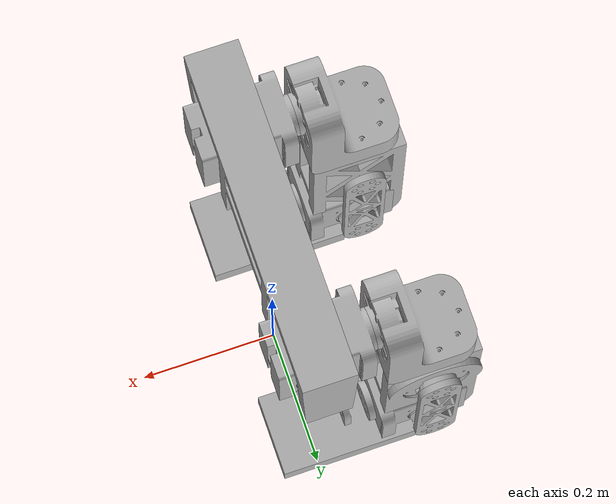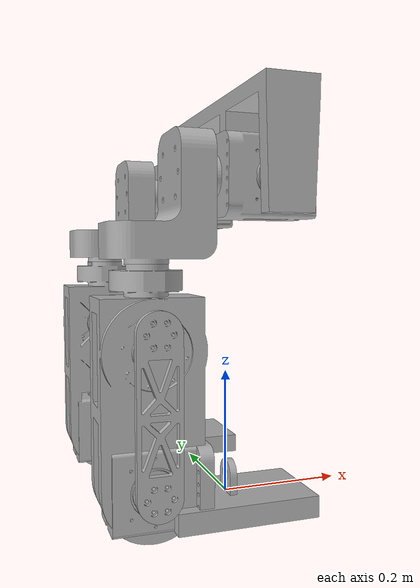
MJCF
<?xml version='1.0' encoding='utf-8'?>
<mujoco model="nemo4">
<compiler angle="radian" meshdir="assets" autolimits="true" />

  <option timestep="0.0035" iterations="8" ls_iterations="4">
    <flag eulerdamp="disable" />
  </option>

  <custom>
        <numeric data="2500" name="constraint_limit_stiffness" />
        <numeric data="27000" name="constraint_stiffness" />
        <numeric data="30" name="constraint_ang_damping" />
        <numeric data="80" name="constraint_vel_damping" />
        <numeric data="-0.05" name="ang_damping" />
        <numeric data="0.5" name="joint_scale_pos" />
        <numeric data="0.1" name="joint_scale_ang" />
        <numeric data="0" name="spring_mass_scale" />
        <numeric data="1" name="spring_inertia_scale" />
        <numeric data="20" name="matrix_inv_iterations" />
        <numeric data="15" name="solver_maxls" />
  </custom>

  <visual>
    <global ellipsoidinertia="true" />
  </visual>
  <default>
    <geom contype="0" conaffinity="0" condim="3" solref="0.005 1" />
    <equality solref="0.005 1" />
    <default class="robot">
      <site rgba="1 0 0 1" size="0.01" group="5" />
      <default class="visual">
        <geom group="2" type="mesh" contype="0" conaffinity="0" density="0" material="metallic" />
      </default>
      <default class="collision">
        <geom conaffinity="1" contype="1" group="3" rgba="0.5 0.5 0.5 1" material="metallic" />
      </default>
    </default>
  </default>

  <asset>
    <material name="metallic" rgba="0.7 0.7 0.7 1" />
    <material name="black" rgba="0.2 0.2 0.2 1" />
    <material name="transparent" rgba="0 0 0 0" />

    <mesh file="pelvis.stl" />
    <mesh name="l_hip_pitch" file="l_hip_pitch.stl" />
    <mesh name="l_hip_roll" file="l_hip_roll.stl" />
    <mesh name="l_hip_yaw" file="l_hip_yaw.stl" />
    <mesh name="l_knee" file="l_knee.stl" />
    <mesh name="l_foot_pitch" file="l_foot_pitch.stl" />
    <mesh name="l_foot_roll" file="l_foot_roll.stl" />

    <mesh name="r_hip_pitch" file="l_hip_pitch.stl" scale="1 -1 1" />
    <mesh name="r_hip_roll" file="l_hip_roll.stl" scale="1 -1 1" />
    <mesh name="r_hip_yaw" file="l_hip_yaw.stl" scale="1 -1 1" />
    <mesh name="r_knee" file="l_knee.stl" scale="1 -1 1" />
    <mesh name="r_foot_pitch" file="l_foot_pitch.stl" scale="1 -1 1" />
    <mesh name="r_foot_roll" file="l_foot_roll.stl" scale="1 -1 1" />

  </asset>
<worldbody>
  <light name="spotlight" mode="targetbodycom" target="pelvis" pos="0 -6 4" cutoff="30" />
  <body name="pelvis" pos="0.0 0.0 0.618" childclass="robot">
    <inertial pos="0.0 0.0 -0.028416610000000002" mass="6.34472558" fullinertia="0.01 0.01 0.01 0 0 0"/>
    <freejoint name="floating_base" />
    <geom type="mesh" class="visual" mesh="pelvis" />
    <body name="l_hip_pitch" pos="0.0 0.1568 -0.1244">
      <inertial pos="-0.01828491 -0.0 -2.282e-05" mass="2.02272168" fullinertia="0.01194771 0.00843561 0.01450771 0.00273097 -1.59e-06 -1.17e-06"/>
      <joint armature="0.005"  damping="2" frictionloss="0.1" actuatorfrcrange="-46 46" name="l_hip_pitch" axis="0 1 0" range="-1.3 1.3" />
      <geom type="mesh" class="visual" mesh="l_hip_pitch" />
      <body name="l_hip_roll" pos="-0.0855 0.0 0.0">
        <inertial pos="-0.05411370000000001 -1.11e-05 -0.04747620000000001" mass="2.18541932" fullinertia="0.01060697 0.01124775 0.00789875 1.6e-07 -0.00296396 -7e-07" />
        <joint armature="0.005"  damping="2" frictionloss="0.1" actuatorfrcrange="-23 23" name="l_hip_roll" axis="1 0 0" range="-0.35 1.0" />
        <geom type="mesh" class="visual" mesh="l_hip_roll" />
        <body name="l_hip_yaw" pos="-0.0841 0.0 -0.1158">
          <inertial pos="-2.282e-05 -0.0 -0.06721509" mass="2.02272168" fullinertia="0.00620274 0.00674788 0.00423406 -0.0 1.09e-06 2e-07"/>
          <joint armature="0.005"  damping="2" frictionloss="0.1" actuatorfrcrange="-23 23" name="l_hip_yaw" axis="0 0 1" range="-2.5 2.5" />
          <geom type="mesh" class="visual" mesh="l_hip_yaw" />
          <body name="l_knee" pos="0.0 0.0 -0.0855">
            <inertial pos="0.0 -0.0 -0.103" mass="0.56082045" fullinertia="0.00606987 0.00391208 0.0025227 -0.0 0.0 -0.0"/>
            <joint armature="0.005"  damping="2" frictionloss="0.1" actuatorfrcrange="-46 46" name="l_knee" axis="0 1 0" range="-2 2" />
            <geom type="mesh" class="visual" mesh="l_knee" />
            <body name="l_foot_pitch" pos="0.0 0.0 -0.206">
              <inertial pos="0.01828491 -0.0 -2.282e-05" mass="2.02272168" fullinertia="0.00423406 0.00674788 0.00620274 -2e-07 1.09e-06 -0.0"/>
              <joint armature="0.005"  damping="2" frictionloss="0.1" actuatorfrcrange="-46 46" name="l_foot_pitch" axis="0 1 0" range="-1.0 1.0" />
              <geom type="mesh" class="visual" mesh="l_foot_pitch" />
              <body name="l_foot_roll" pos="0.0855 0.0 0.0">
                <inertial pos="0.01657002 -0.0 -0.03378122" mass="2.09388829" fullinertia="0.0074471 0.00827286 0.0062946 -3.8e-07 0.00138373 -1e-06"/>
                <joint armature="0.005"  damping="2" frictionloss="0.1" actuatorfrcrange="-23 23" name="l_foot_roll" axis="1 0 0" range="-1 1" />
                <geom type="mesh" class="visual" mesh="l_foot_roll" />
                <geom class="collision" name="left_foot" pos="-0.0117 0 -0.07625" size="0.1 0.0575 0.01" type="box" />
                <site name="left_foot_p1" pos="0.05 0.0 -0.0762" />
                <site name="left_foot_p2" pos="-0.05 0.0 -0.0762" />
                <site name="left_foot_p3" pos="0.0 0.05 -0.0762" />
              </body>
            </body>
          </body>
        </body>
      </body>
    </body>

    <body name="r_hip_pitch" pos="0.0 -0.1568 -0.1244">
      <inertial pos="-0.01828491 -0.0 -2.282e-05" mass="2.02272168" fullinertia="0.01194771 0.00843561 0.01450771 0.00273097 -1.59e-06 -1.17e-06"/>
      <joint armature="0.005"  damping="2" frictionloss="0.1" actuatorfrcrange="-46 46" name="r_hip_pitch" axis="0 1 0" range="-1.3 1.3" />
      <geom type="mesh" class="visual" mesh="r_hip_pitch" />
      <body name="r_hip_roll" pos="-0.0855 0.0 0.0">
        <inertial pos="-0.05411370000000001 -1.11e-05 -0.04747620000000001" mass="2.18541932" fullinertia="0.01060697 0.01124775 0.00789875 1.6e-07 -0.00296396 -7e-07"/>
        <joint armature="0.005"  damping="2" frictionloss="0.1" actuatorfrcrange="-23 23" name="r_hip_roll" axis="1 0 0" range="-1.0 0.35" />
        <geom type="mesh" class="visual" mesh="r_hip_roll" />
        <body name="r_hip_yaw" pos="-0.0841 -0.0 -0.1158">
          <inertial pos="-2.282e-05 -0.0 -0.06721509" mass="2.02272168" fullinertia="0.00620274 0.00674788 0.00423406 -0.0 1.09e-06 2e-07"/>
          <joint armature="0.005"  damping="2" frictionloss="0.1" actuatorfrcrange="-23 23" name="r_hip_yaw" axis="0 0 1" range="-2.5 2.5" />
          <geom type="mesh" class="visual" mesh="r_hip_yaw" />
          <body name="r_knee" pos="0.0 -0.0 -0.0855">
            <inertial pos="0.0 -0.0 -0.103" mass="0.56082045" fullinertia="0.00606987 0.00391208 0.0025227 -0.0 0.0 -0.0"/>
            <joint armature="0.005"  damping="2" frictionloss="0.1" actuatorfrcrange="-46 46" name="r_knee" axis="0 1 0" range="-2 2" />
            <geom type="mesh" class="visual" mesh="l_knee" />
            <body name="r_foot_pitch" pos="0.0 -0.0 -0.206">
              <inertial pos="0.01828491 -0.0 -2.282e-05" mass="2.02272168" fullinertia="0.00423406 0.00674788 0.00620274 -2e-07 1.09e-06 -0.0"/>
              <joint armature="0.005"  damping="2" frictionloss="0.1" actuatorfrcrange="-46 46" name="r_foot_pitch" axis="0 1 0" range="-1.0 1.0" />
              <geom type="mesh" class="visual" mesh="l_foot_pitch" />
              <body name="r_foot_roll" pos="0.0855 -0.0 0.0">
                <inertial pos="0.01657002 -0.0 -0.03378122" mass="2.09388829" fullinertia="0.0074471 0.00827286 0.0062946 -3.8e-07 0.00138373 -1e-06"/>
                <joint armature="0.005"  damping="2" frictionloss="0.1" actuatorfrcrange="-23 23" name="r_foot_roll" axis="1 0 0" range="-1 1" />
                <geom type="mesh" class="visual" mesh="l_foot_roll" />
                <geom class="collision" name="right_foot" pos="-0.0117 0 -0.07625" size="0.1 0.0575 0.01" type="box" />
                <site name="right_foot_p1" pos="0.05 0.0 -0.0762" />
                <site name="right_foot_p2" pos="-0.05 0.0 -0.0762" />
                <site name="right_foot_p3" pos="0.0 -0.05 -0.0762" />
              </body>
            </body>
          </body>
        </body>
      </body>
    </body>
    <site name="pelvis_back" pos="-0.05 0.0 0.0" />
    <site name="pelvis_front" pos="0.05 0.0 0.0" />
    <site name="head" pos="0.0 0.0 0.5" />
    <site name="imu_in_pelvis" size="0.01" pos="0.0 0.0 0.0" />
    <light name="tracking" mode="trackcom" pos="0 0 2" />
  </body>
</worldbody>
<actuator>

  <position kp="50.0" class="robot" name="l_hip_pitch" joint="l_hip_pitch"  inheritrange="1" />
  <position kp="40.0" class="robot" name="l_hip_roll" joint="l_hip_roll"  inheritrange="1" />
  <position kp="40.0" class="robot" name="l_hip_yaw" joint="l_hip_yaw"  inheritrange="1" />
  <position kp="50.0" class="robot" name="l_knee" joint="l_knee"  inheritrange="1" />
  <position kp="22.0" class="robot" name="l_foot_pitch" joint="l_foot_pitch"  inheritrange="1" />
  <position kp="20.0" class="robot" name="l_foot_roll" joint="l_foot_roll"  inheritrange="1" />

  <position kp="50.0" class="robot" name="r_hip_pitch" joint="r_hip_pitch"  inheritrange="1" />
  <position kp="40.0" class="robot" name="r_hip_roll" joint="r_hip_roll"  inheritrange="1" />
  <position kp="40.0" class="robot" name="r_hip_yaw" joint="r_hip_yaw"  inheritrange="1" />
  <position kp="50.0" class="robot" name="r_knee" joint="r_knee"  inheritrange="1" />
  <position kp="22.0" class="robot" name="r_foot_pitch" joint="r_foot_pitch"  inheritrange="1" />
  <position kp="20.0" class="robot" name="r_foot_roll" joint="r_foot_roll"  inheritrange="1" />
  <velocity kv="4" class="robot" name="l_hip_pitch_v" joint="l_hip_pitch"  ctrlrange="-20 20"/>
  <velocity kv="2" class="robot" name="l_hip_roll_v" joint="l_hip_roll"  ctrlrange="-20 20"/>
  <velocity kv="2" class="robot" name="l_hip_yaw_v" joint="l_hip_yaw"  ctrlrange="-20 20"/>
  <velocity kv="4" class="robot" name="l_knee_v" joint="l_knee"  ctrlrange="-20 20" />
  <velocity kv="4" class="robot" name="l_foot_pitch_v" joint="l_foot_pitch"  ctrlrange="-20 20"/>
  <velocity kv="2" class="robot" name="l_foot_roll_v" joint="l_foot_roll"  ctrlrange="-20 20"/>

  <velocity kv="4" class="robot" name="r_hip_pitch_v" joint="r_hip_pitch"  ctrlrange="-20 20"/>
  <velocity kv="2" class="robot" name="r_hip_roll_v" joint="r_hip_roll"  ctrlrange="-20 20"/>
  <velocity kv="2" class="robot" name="r_hip_yaw_v" joint="r_hip_yaw"  ctrlrange="-20 20"/>
  <velocity kv="4" class="robot" name="r_knee_v" joint="r_knee"  ctrlrange="-20 20" />
  <velocity kv="4" class="robot" name="r_foot_pitch_v" joint="r_foot_pitch"  ctrlrange="-20 20"/>
  <velocity kv="2" class="robot" name="r_foot_roll_v" joint="r_foot_roll"  ctrlrange="-20 20"/>
</actuator>

<keyframe>
    <key name="stand" qpos="       0 0 0.618       1 0 0 0       0 0 0 0 0 0       0 0 0 0 0 0       " />
</keyframe>

<sensor>
    <velocimeter site="imu_in_pelvis" name="local_linvel_pelvis"/>
    <accelerometer site="imu_in_pelvis" name="accelerometer_pelvis"/>
    <gyro site="imu_in_pelvis" name="gyro_pelvis"/>
</sensor>

</mujoco>
